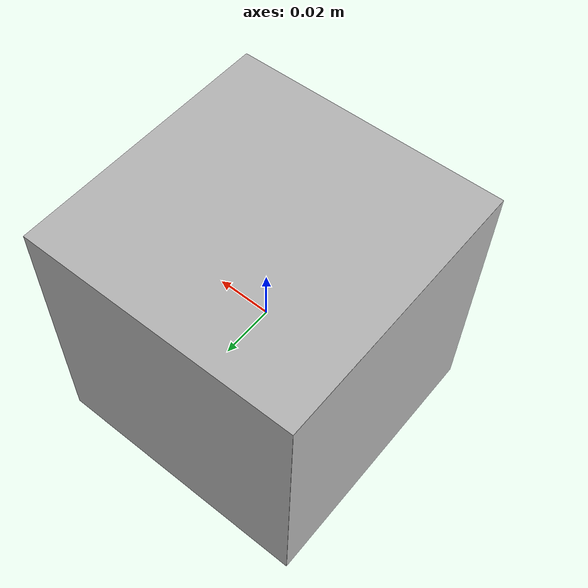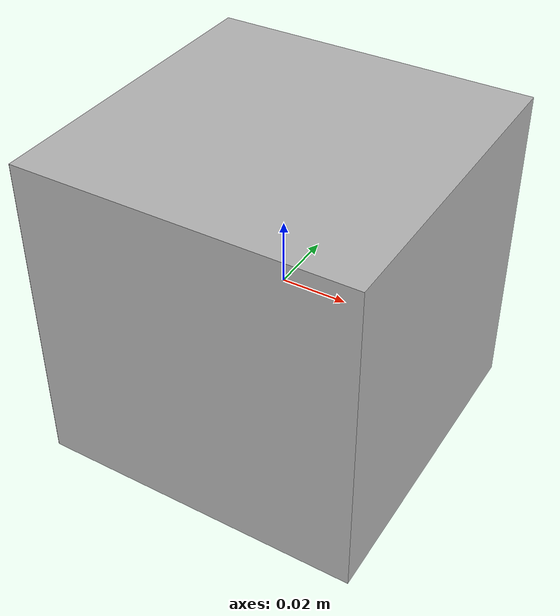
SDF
<?xml version="1.0"?>
<sdf version="1.6">
  <model name="aruco_marker1">
    <link name="link">
      <pose frame=''>0 0 0.0 0 0 0</pose>
      <inertial>
        <pose>0 0 0 0 0 0</pose>
        <mass>0.1</mass>
        <inertia>
          <ixx>0.0001</ixx>
          <ixy>0.0</ixy>
          <ixz>0.0</ixz>
          <iyy>0.0001</iyy>
          <iyz>0.0</iyz>
          <izz>0.0001</izz>
        </inertia>
      </inertial>
      <visual name="front_visual">
        <pose>0.0 0 0 0 0 0</pose>
        <geometry>
          <box>
            <size>0.1 0.1 0.1</size>
          </box>
        </geometry>

      </visual>
      <!-- Hide the marker from the back -->
      <visual name="rear_visual">
        <pose>-0.05 0 0 0 0 0</pose>
        <geometry>
          <box>
            <size>0.0001 0.1 0.1</size>
          </box>
        </geometry>
        <material>
          <script>
            <uri>model://aruco_marker1/materials/scripts</uri>
            <uri>model://aruco_marker1/materials/textures</uri>
            <name>Marker1</name>
          </script>
        </material>
      </visual>
      <collision name="collision">
        <pose>0 0 0 0 0 0</pose>
        <geometry>
          <box>
            <size>0.1 0.1 0.1</size>
          </box>
        </geometry>
        <surface>
        <friction>
          <ode>
            <mu>1</mu>
            <mu2>1</mu2>
          </ode>
        </friction>
      </surface>
      </collision>
    </link>
    <static>0</static>
    <allow_auto_disable>1</allow_auto_disable>
  </model>
</sdf>
